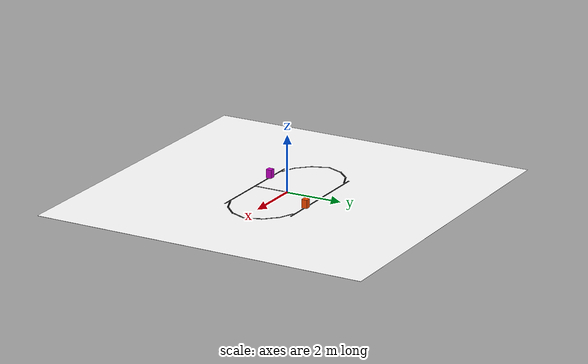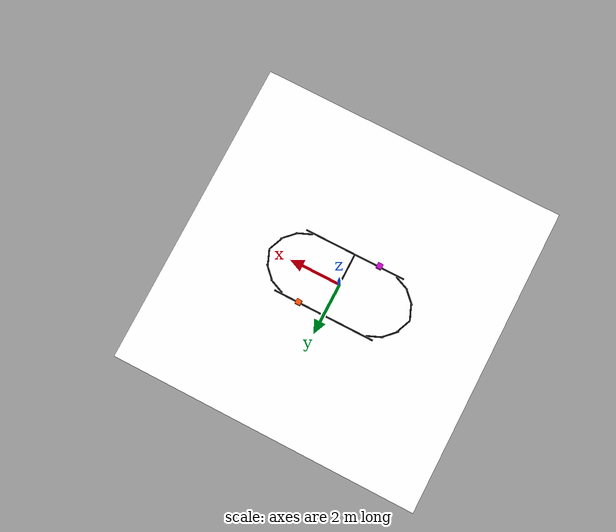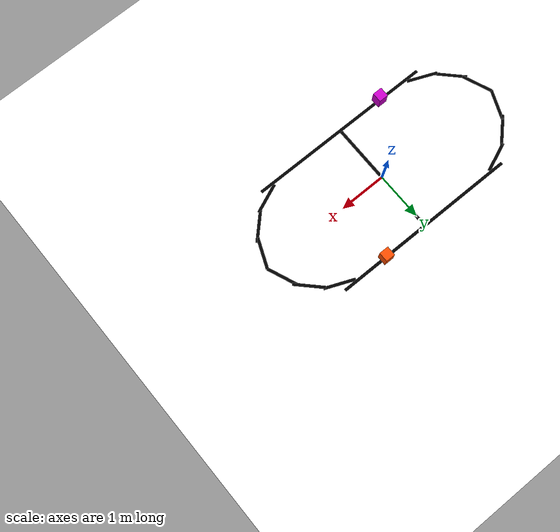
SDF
<?xml version="1.0"?>
<sdf version="1.6">
  <world name="line_world">

    <!-- ── Lighting ─────────────────────────────────────────────── -->
    <include><uri>model://sun</uri></include>

    <!-- ── Physics ──────────────────────────────────────────────── -->
    <physics type="ode">
      <real_time_update_rate>1000</real_time_update_rate>
      <max_step_size>0.001</max_step_size>
    </physics>

    <!-- ── White ground plane ────────────────────────────────────── -->
    <model name="white_floor">
      <static>true</static>
      <pose>0 0 -0.001 0 0 0</pose>
      <link name="link">
        <collision name="col">
          <geometry><box><size>12 12 0.002</size></box></geometry>
        </collision>
        <visual name="vis">
          <geometry><box><size>12 12 0.002</size></box></geometry>
          <material>
            <ambient>0.95 0.95 0.95 1</ambient>
            <diffuse>1 1 1 1</diffuse>
            <specular>0.1 0.1 0.1 1</specular>
          </material>
        </visual>
      </link>
    </model>

    <!-- Straight section — going right (+X) -->
    <model name="line_top">
      <static>true</static>
      <pose>0 1.25 0.001 0 0 0</pose>
      <link name="link">
        <visual name="vis">
          <geometry><box><size>4.0 0.06 0.001</size></box></geometry>
          <material><ambient>0 0 0 1</ambient><diffuse>0 0 0 1</diffuse></material>
        </visual>
      </link>
    </model>

    <!-- Straight section — going left (-X) -->
    <model name="line_bottom">
      <static>true</static>
      <pose>0 -1.25 0.001 0 0 0</pose>
      <link name="link">
        <visual name="vis">
          <geometry><box><size>4.0 0.06 0.001</size></box></geometry>
          <material><ambient>0 0 0 1</ambient><diffuse>0 0 0 1</diffuse></material>
        </visual>
      </link>
    </model>

    <!-- ── Center perpendicular connector ────────────────────────── -->
    <model name="line_center">
      <static>true</static>
      <pose>0 0 0.001 0 0 1.5708</pose>
      <link name="link">
        <visual name="vis">
          <geometry><box><size>2.56 0.06 0.001</size></box></geometry>
          <material><ambient>0 0 0 1</ambient><diffuse>0 0 0 1</diffuse></material>
        </visual>
      </link>
    </model>

    <!-- Right semicircle: approximate with 8 short segments -->
    <model name="line_rc0"><static>true</static>
      <pose>2.0  1.087 0.001 0 0 -0.3927</pose>
      <link name="link"><visual name="vis"><geometry><box><size>0.64 0.06 0.001</size></box></geometry>
        <material><ambient>0 0 0 1</ambient><diffuse>0 0 0 1</diffuse></material></visual></link></model>

    <model name="line_rc1"><static>true</static>
      <pose>2.471 0.75 0.001 0 0 -0.7854</pose>
      <link name="link"><visual name="vis"><geometry><box><size>0.64 0.06 0.001</size></box></geometry>
        <material><ambient>0 0 0 1</ambient><diffuse>0 0 0 1</diffuse></material></visual></link></model>

    <model name="line_rc2"><static>true</static>
      <pose>2.75 0.293 0.001 0 0 -1.1781</pose>
      <link name="link"><visual name="vis"><geometry><box><size>0.64 0.06 0.001</size></box></geometry>
        <material><ambient>0 0 0 1</ambient><diffuse>0 0 0 1</diffuse></material></visual></link></model>

    <model name="line_rc3"><static>true</static>
      <pose>2.75 -0.293 0.001 0 0 1.1781</pose>
      <link name="link"><visual name="vis"><geometry><box><size>0.64 0.06 0.001</size></box></geometry>
        <material><ambient>0 0 0 1</ambient><diffuse>0 0 0 1</diffuse></material></visual></link></model>

    <model name="line_rc4"><static>true</static>
      <pose>2.471 -0.75 0.001 0 0 0.7854</pose>
      <link name="link"><visual name="vis"><geometry><box><size>0.64 0.06 0.001</size></box></geometry>
        <material><ambient>0 0 0 1</ambient><diffuse>0 0 0 1</diffuse></material></visual></link></model>

    <model name="line_rc5"><static>true</static>
      <pose>2.0 -1.087 0.001 0 0 0.3927</pose>
      <link name="link"><visual name="vis"><geometry><box><size>0.64 0.06 0.001</size></box></geometry>
        <material><ambient>0 0 0 1</ambient><diffuse>0 0 0 1</diffuse></material></visual></link></model>

    <!-- Left semicircle -->
    <model name="line_lc0"><static>true</static>
      <pose>-2.0  1.087 0.001 0 0  0.3927</pose>
      <link name="link"><visual name="vis"><geometry><box><size>0.64 0.06 0.001</size></box></geometry>
        <material><ambient>0 0 0 1</ambient><diffuse>0 0 0 1</diffuse></material></visual></link></model>

    <model name="line_lc1"><static>true</static>
      <pose>-2.471 0.75 0.001 0 0  0.7854</pose>
      <link name="link"><visual name="vis"><geometry><box><size>0.64 0.06 0.001</size></box></geometry>
        <material><ambient>0 0 0 1</ambient><diffuse>0 0 0 1</diffuse></material></visual></link></model>

    <model name="line_lc2"><static>true</static>
      <pose>-2.75 0.293 0.001 0 0  1.1781</pose>
      <link name="link"><visual name="vis"><geometry><box><size>0.64 0.06 0.001</size></box></geometry>
        <material><ambient>0 0 0 1</ambient><diffuse>0 0 0 1</diffuse></material></visual></link></model>

    <model name="line_lc3"><static>true</static>
      <pose>-2.75 -0.293 0.001 0 0 -1.1781</pose>
      <link name="link"><visual name="vis"><geometry><box><size>0.64 0.06 0.001</size></box></geometry>
        <material><ambient>0 0 0 1</ambient><diffuse>0 0 0 1</diffuse></material></visual></link></model>

    <model name="line_lc4"><static>true</static>
      <pose>-2.471 -0.75 0.001 0 0 -0.7854</pose>
      <link name="link"><visual name="vis"><geometry><box><size>0.64 0.06 0.001</size></box></geometry>
        <material><ambient>0 0 0 1</ambient><diffuse>0 0 0 1</diffuse></material></visual></link></model>

    <model name="line_lc5"><static>true</static>
      <pose>-2.0 -1.087 0.001 0 0 -0.3927</pose>
      <link name="link"><visual name="vis"><geometry><box><size>0.64 0.06 0.001</size></box></geometry>
        <material><ambient>0 0 0 1</ambient><diffuse>0 0 0 1</diffuse></material></visual></link></model>

    <!-- ── Obstacle 1 — on the top straight ─────────────────────── -->
    <model name="obstacle_1">
      <static>true</static>
      <pose>1.0 1.25 0.15 0 0 0</pose>
      <link name="link">
        <collision name="col">
          <geometry><box><size>0.2 0.2 0.3</size></box></geometry>
        </collision>
        <visual name="vis">
          <geometry><box><size>0.2 0.2 0.3</size></box></geometry>
          <material><ambient>1 0.3 0 1</ambient><diffuse>1 0.3 0 1</diffuse></material>
        </visual>
      </link>
    </model>

    <!-- ── Obstacle 2 — on the bottom straight ───────────────────── -->
    <model name="obstacle_2">
      <static>true</static>
      <pose>-1.0 -1.25 0.15 0 0 0</pose>
      <link name="link">
        <collision name="col">
          <geometry><box><size>0.2 0.2 0.3</size></box></geometry>
        </collision>
        <visual name="vis">
          <geometry><box><size>0.2 0.2 0.3</size></box></geometry>
          <material><ambient>0.8 0 0.8 1</ambient><diffuse>0.8 0 0.8 1</diffuse></material>
        </visual>
      </link>
    </model>

  </world>
</sdf>
